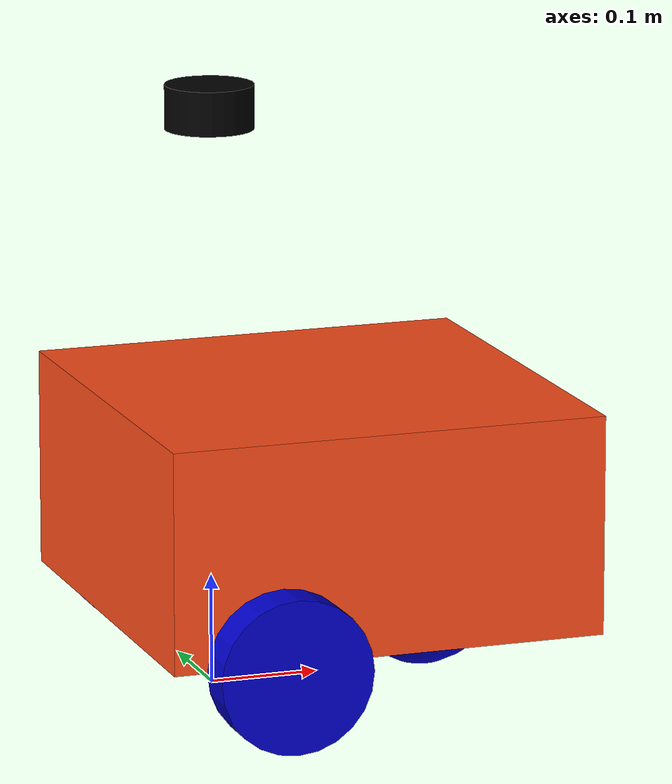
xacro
<?xml version="1.0"?>
<robot xmlns:xacro="http://www.ros.org/wiki/xacro">

	<material name="blue">
         	<color rgba="0 0 0.8 1"/>
      	</material>

	<material name="white">
         	<color rgba="1 1 1 1"/>
      	</material>

    	<material name="orange">
        	<color rgba="1 0.3 0.1 1"/>
    	</material>

    	<material name="black">
        	<color rgba="0 0 0 1"/>
    	</material>

    	<link name="base_footprint">
    		<origin xyz="0.0 0.0 0.0"/>
    	</link>

       <joint name="base_footprint_joint" type="fixed">
       	<origin xyz="0 0 0" rpy="0 0 0"/>
        	<parent link="base_footprint"/>
        	<child link="base_link"/>

    	</joint>

       <link name="base_link">
       	<origin xyz="0.0 0.0 0.0"/>

       </link>

    <!-- CHASSIS_LINK -->

    <joint name="chassis_joint" type="fixed">
        <parent link="base_link"/>
        <child link="chassis"/>
        <origin xyz="-0.1 0.0 0.0"/>
    </joint>

    <link name="chassis">
        <inertial>
            <origin xyz="0.2 0.0 0.17" rpy="0.0 0.0 0.0"/>
            <mass value="12.0"/>
            <inertia ixx="0.1" ixy="0.0" ixz="0.0" iyy="0.1" iyz="0.0" izz="0.1"/>
        </inertial>
        <visual>
            <origin xyz="0.2 0.0 0.17" rpy="0.0 0.0 0.0"/>
            <geometry>
                <box size="0.4 0.4 0.2"/>
            </geometry>
            <material name="orange"/>
        </visual>
        <collision>
            <origin xyz="0.2 0.0 0.17" rpy="0.0 0.0 0.0"/>
            <geometry>
                <box size="0.4 0.4 0.2"/>
            </geometry>
        </collision>
    </link>

<!--right wheel-->

       <link name="right_wheel">
         	<visual>
           		<geometry>
             			<cylinder length="0.04" radius="0.07"/>
           		</geometry>
           		<material name="blue"/>
         	</visual>
         	<collision>
           		<geometry>
             			<cylinder length="0.04" radius="0.07"/>
           		</geometry>
         	</collision>
       	<inertial>
            		<mass value="0.5" />
            		<inertia ixx="0.1" ixy="0.0" ixz="0.0"
                    		iyy="0.1" iyz="0.0"
                    		izz="0.1" />
        	</inertial>
       </link>
       <joint name="right_wheel_joint" type="continuous">
         	<parent link="base_link"/>
         	<child link="right_wheel"/>
         	<origin xyz="0 -0.22 0.07" rpy="${pi/2} 0 0"/>
         	<axis xyz="0 0 -1"/>
       </joint>

<!--left wheel-->

	<link name="left_wheel">
         	<visual>
           		<geometry>
             			<cylinder length="0.04" radius="0.07"/>
           		</geometry>
           		<material name="blue"/>
         	</visual>
         	<collision>
           		<geometry>
             			<cylinder length="0.04" radius="0.07"/>
           		</geometry>
         	</collision>
         	<inertial>
            		<mass value="0.5" />
            		<inertia ixx="0.1" ixy="0.0" ixz="0.0"
                    		iyy="0.1" iyz="0.0"
                    		izz="0.1" />
        	</inertial>
       </link>
       <joint name="left_wheel_joint" type="continuous">
       	<parent link="base_link"/>
         	<child link="left_wheel"/>
         	<origin xyz="0 0.22 0.07" rpy="${-pi/2} 0.0 0.0"/>
         	<axis xyz="0 0 1"/>
       </joint>

<!--caster wheel-->
	<joint name = "caster_wheel_joint" type = "fixed" >
		<parent link = "chassis" />
		<child link = "caster_wheel" />
		<origin xyz = "0.3 0 0.07" />
	</joint>

	<link name = "caster_wheel" >
		<visual>
			<geometry>
				<sphere radius = "0.07" />
			</geometry>
			<material name = "blue" />
		</visual>
		<collision>
			<geometry>
				<sphere radius = "0.07" />
			</geometry>
		</collision>
		<inertial>
            		<mass value="0.2" />
            		<origin xyz="0 0 0.07" rpy="0 0 0"/>
            		<inertia ixx="0.1" ixy="0.0" ixz="0.0"
                    		iyy="0.1" iyz="0.0"
                    		izz="0.1" />
        	</inertial>
	</link>

       <!-- lidar -->
    <joint name="joint_scan" type="fixed">
        <origin xyz="0.0 0.0 0.53" rpy="0.0 0.0 0.0"/>
        <parent link="base_link"/>
        <child link="laser"/>
    </joint>

    <link name="laser">
        <visual>
            <geometry>
                <cylinder radius="0.04" length="0.04"/>
            </geometry>
            <material name="black"/>
        </visual>
        <collision>
            <geometry>
                <cylinder radius="0.04" length="0.04"/>
            </geometry>
        </collision>
        <inertial>
            <mass value="0.2"/>
            <inertia ixx="0.01" ixy="0.0" ixz="0.0" iyy="0.01" iyz="0.0" izz="0.01"/>
        </inertial>
    </link>

    <!-- plugin lidar -->

</robot>
